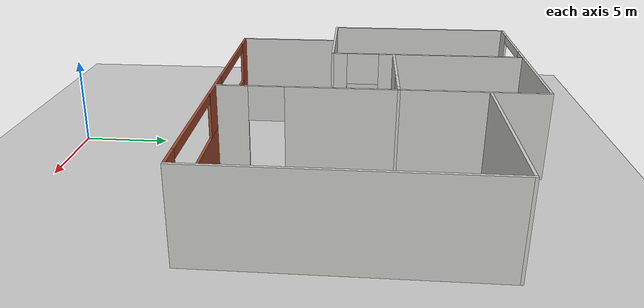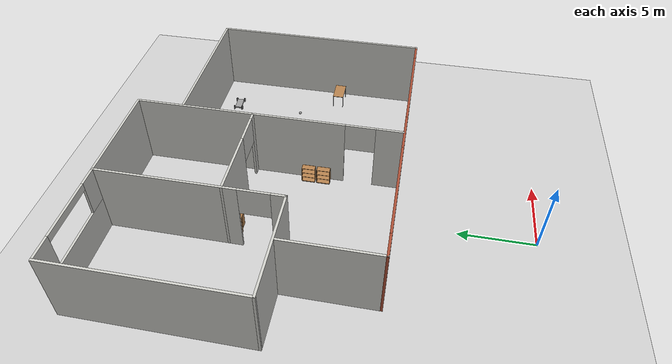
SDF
<sdf version="1.6">
 <world name="default">
  <plugin name="hello" filename="libhello.so"/>
  <light name="sun" type="directional">
   <pose>0 0 10 0 -0 0</pose>
   <diffuse>0.8 0.8 0.8 1</diffuse>
   <specular>0.2 0.2 0.2 1</specular>
   <attenuation>
    <range>1000</range>
    <constant>0.9</constant>
    <linear>0.01</linear>
    <quadratic>0.001</quadratic>
   </attenuation>
   <direction>-0.5 0.1 -0.9</direction>
  </light>
  <model name="ground_plane">
   <static>1</static>
   <link name="link">
    <collision name="collision">
     <geometry><plane><normal>0 0 1</normal><size>100 100</size></plane></geometry>
     <surface><friction><ode><mu>100</mu><mu2>50</mu2></ode></friction></surface>
    </collision>
    <visual name="visual">
     <cast_shadows>0</cast_shadows>
     <geometry><plane><normal>0 0 1</normal><size>100 100</size></plane></geometry>
     <material>
      <script><uri>file://media/materials/scripts/gazebo.material</uri><name>Gazebo/Grey</name></script>
     </material>
    </visual>
   </link>
  </model>
  <gravity>0 0 -9.8</gravity>
  <magnetic_field>6e-06 2.3e-05 -4.2e-05</magnetic_field>
  <atmosphere type="adiabatic"/>
  <physics name="default_physics" default="0" type="ode">
   <max_step_size>0.001</max_step_size>
   <real_time_factor>1</real_time_factor>
   <real_time_update_rate>1000</real_time_update_rate>
  </physics>
  <scene><ambient>0.4 0.4 0.4 1</ambient><background>0.7 0.7 0.7 1</background><shadows>1</shadows></scene>
  <spherical_coordinates>
   <surface_model>EARTH_WGS84</surface_model>
   <latitude_deg>0</latitude_deg>
   <longitude_deg>0</longitude_deg>
   <elevation>0</elevation>
   <heading_deg>0</heading_deg>
  </spherical_coordinates>
  <model name="BotHome">
   <pose>1.5949 18.0788 0 0 -0 0</pose>
   <link name="Door_0">
    <collision name="Door_0_Collision">
     <geometry><box><size>0.9 0.17 2</size></box></geometry>
     <pose>0 0 1 0 -0 0</pose>
    </collision>
    <visual name="Door_0_Visual">
     <pose>0 0 1 0 -0 0</pose>
     <geometry><box><size>0.9 0.17 2</size></box></geometry>
     <material>
      <script><uri>file://media/materials/scripts/gazebo.material</uri><name>Gazebo/Grey</name></script>
     </material>
    </visual>
    <pose>4.52809 6.21207 0 0 -0 0</pose>
   </link>
   <link name="Wall_11">
    <pose>1.85 -4 0 0 -0 1.5708</pose>
    <visual name="Wall_11_Visual_0">
     <pose>-4.12039 0 2.5 0 -0 0</pose>
     <geometry><box><size>1.90922 0.15 5</size></box></geometry>
     <material>
      <script><uri>file://media/materials/scripts/gazebo.material</uri><name>Gazebo/CeilingTiled</name></script>
      <ambient>0.921569 0.807843 0.615686 1</ambient>
     </material>
     <meta><layer>0</layer></meta>
    </visual>
    <collision name="Wall_11_Collision_0">
     <geometry><box><size>1.90922 0.15 5</size></box></geometry>
     <pose>-4.12039 0 2.5 0 -0 0</pose>
    </collision>
    <visual name="Wall_11_Visual_1">
     <pose>1.95461 0 2.5 0 -0 0</pose>
     <geometry><box><size>6.24078 0.15 5</size></box></geometry>
     <material>
      <script><uri>file://media/materials/scripts/gazebo.material</uri><name>Gazebo/CeilingTiled</name></script>
      <ambient>0.921569 0.807843 0.615686 1</ambient>
     </material>
     <meta><layer>0</layer></meta>
    </visual>
    <collision name="Wall_11_Collision_1">
     <geometry><box><size>6.24078 0.15 5</size></box></geometry>
     <pose>1.95461 0 2.5 0 -0 0</pose>
    </collision>
    <visual name="Wall_11_Visual_2">
     <pose>-2.16578 0 4 0 -0 0</pose>
     <geometry><box><size>2 0.15 2</size></box></geometry>
     <material>
      <script><uri>file://media/materials/scripts/gazebo.material</uri><name>Gazebo/CeilingTiled</name></script>
      <ambient>0.921569 0.807843 0.615686 1</ambient>
     </material>
     <meta><layer>0</layer></meta>
    </visual>
    <collision name="Wall_11_Collision_2">
     <geometry><box><size>2 0.15 2</size></box></geometry>
     <pose>-2.16578 0 4 0 -0 0</pose>
    </collision>
   </link>
   <link name="Wall_25">
    <pose>-1.575 1 0 0 -0 3.14159</pose>
    <visual name="Wall_25_Visual_0">
     <pose>-3.2031 0 2.5 0 -0 0</pose>
     <geometry><box><size>0.593804 0.15 5</size></box></geometry>
     <material>
      <script><uri>file://media/materials/scripts/gazebo.material</uri><name>Gazebo/CeilingTiled</name></script>
      <ambient>0.921569 0.807843 0.615686 1</ambient>
     </material>
     <meta><layer>0</layer></meta>
    </visual>
    <collision name="Wall_25_Collision_0">
     <geometry><box><size>0.593804 0.15 5</size></box></geometry>
     <pose>-3.2031 0 2.5 0 -0 0</pose>
    </collision>
    <visual name="Wall_25_Visual_1">
     <pose>1.2969 0 2.5 0 -0 0</pose>
     <geometry><box><size>4.4062 0.15 5</size></box></geometry>
     <material>
      <script><uri>file://media/materials/scripts/gazebo.material</uri><name>Gazebo/CeilingTiled</name></script>
      <ambient>0.921569 0.807843 0.615686 1</ambient>
     </material>
     <meta><layer>0</layer></meta>
    </visual>
    <collision name="Wall_25_Collision_1">
     <geometry><box><size>4.4062 0.15 5</size></box></geometry>
     <pose>1.2969 0 2.5 0 -0 0</pose>
    </collision>
    <visual name="Wall_25_Visual_2">
     <pose>-1.9062 0 4 0 -0 0</pose>
     <geometry><box><size>2 0.15 2</size></box></geometry>
     <material>
      <script><uri>file://media/materials/scripts/gazebo.material</uri><name>Gazebo/CeilingTiled</name></script>
      <ambient>0.921569 0.807843 0.615686 1</ambient>
     </material>
     <meta><layer>0</layer></meta>
    </visual>
    <collision name="Wall_25_Collision_2">
     <geometry><box><size>2 0.15 2</size></box></geometry>
     <pose>-1.9062 0 4 0 -0 0</pose>
    </collision>
   </link>
   <link name="Wall_27">
    <pose>-5 -0.925 0 0 0 -1.5708</pose>
    <visual name="Wall_27_Visual_0">
     <pose>-1.49609 0 2.5 0 -0 0</pose>
     <geometry><box><size>1.00781 0.15 5</size></box></geometry>
     <material>
      <script><uri>file://media/materials/scripts/gazebo.material</uri><name>Gazebo/CeilingTiled</name></script>
      <ambient>0.921569 0.807843 0.615686 1</ambient>
     </material>
     <meta><layer>0</layer></meta>
    </visual>
    <collision name="Wall_27_Collision_0">
     <geometry><box><size>1.00781 0.15 5</size></box></geometry>
     <pose>-1.49609 0 2.5 0 -0 0</pose>
    </collision>
    <visual name="Wall_27_Visual_1">
     <pose>1.50391 0 2.5 0 -0 0</pose>
     <geometry><box><size>0.992188 0.15 5</size></box></geometry>
     <material>
      <script><uri>file://media/materials/scripts/gazebo.material</uri><name>Gazebo/CeilingTiled</name></script>
      <ambient>0.921569 0.807843 0.615686 1</ambient>
     </material>
     <meta><layer>0</layer></meta>
    </visual>
    <collision name="Wall_27_Collision_1">
     <geometry><box><size>0.992188 0.15 5</size></box></geometry>
     <pose>1.50391 0 2.5 0 -0 0</pose>
    </collision>
    <visual name="Wall_27_Visual_2">
     <pose>0.007813 0 4 0 -0 0</pose>
     <geometry><box><size>2 0.15 2</size></box></geometry>
     <material>
      <script><uri>file://media/materials/scripts/gazebo.material</uri><name>Gazebo/CeilingTiled</name></script>
      <ambient>0.921569 0.807843 0.615686 1</ambient>
     </material>
     <meta><layer>0</layer></meta>
    </visual>
    <collision name="Wall_27_Collision_2">
     <geometry><box><size>2 0.15 2</size></box></geometry>
     <pose>0.007813 0 4 0 -0 0</pose>
    </collision>
   </link>
   <link name="Wall_29">
    <collision name="Wall_29_Collision">
     <geometry><box><size>7 0.15 5</size></box></geometry>
     <pose>0 0 2.5 0 -0 0</pose>
    </collision>
    <visual name="Wall_29_Visual">
     <pose>0 0 2.5 0 -0 0</pose>
     <geometry><box><size>7 0.15 5</size></box></geometry>
     <material>
      <script><uri>file://media/materials/scripts/gazebo.material</uri><name>Gazebo/CeilingTiled</name></script>
      <ambient>0.921569 0.807843 0.615686 1</ambient>
     </material>
     <meta><layer>0</layer></meta>
    </visual>
    <pose>-8.425 -2.85 0 0 -0 3.14159</pose>
   </link>
   <link name="Wall_31">
    <collision name="Wall_31_Collision">
     <geometry><box><size>6.15 0.15 5</size></box></geometry>
     <pose>0 0 2.5 0 -0 0</pose>
    </collision>
    <visual name="Wall_31_Visual">
     <pose>0 0 2.5 0 -0 0</pose>
     <geometry><box><size>6.15 0.15 5</size></box></geometry>
     <material>
      <script><uri>file://media/materials/scripts/gazebo.material</uri><name>Gazebo/CeilingTiled</name></script>
      <ambient>0.921569 0.807843 0.615686 1</ambient>
     </material>
     <meta><layer>0</layer></meta>
    </visual>
    <pose>-8.15 -6 0 0 -0 1.5708</pose>
   </link>
   <link name="Wall_33">
    <collision name="Wall_33_Collision">
     <geometry><box><size>12 0.15 5</size></box></geometry>
     <pose>0 0 2.5 0 -0 0</pose>
    </collision>
    <visual name="Wall_33_Visual">
     <pose>0 0 2.5 0 -0 0</pose>
     <geometry><box><size>12 0.15 5</size></box></geometry>
     <material>
      <script><uri>file://media/materials/scripts/gazebo.material</uri><name>Gazebo/CeilingTiled</name></script>
      <ambient>0.921569 0.807843 0.615686 1</ambient>
     </material>
     <meta><layer>0</layer></meta>
    </visual>
    <pose>-11.85 3.075 0 0 -0 1.5708</pose>
   </link>
   <link name="Wall_35">
    <collision name="Wall_35_Collision">
     <geometry><box><size>8 0.15 5</size></box></geometry>
     <pose>0 0 2.5 0 -0 0</pose>
    </collision>
    <visual name="Wall_35_Visual">
     <pose>0 0 2.5 0 -0 0</pose>
     <geometry><box><size>8 0.15 5</size></box></geometry>
     <material>
      <script><uri>file://media/materials/scripts/gazebo.material</uri><name>Gazebo/CeilingTiled</name></script>
      <ambient>0.921569 0.807843 0.615686 1</ambient>
     </material>
     <meta><layer>0</layer></meta>
    </visual>
    <pose>-5 4.925 0 0 -0 1.5708</pose>
   </link>
   <link name="Wall_37">
    <pose>-8.425 9 0 0 -0 0</pose>
    <visual name="Wall_37_Visual_0">
     <pose>-2.68249 0 2.5 0 -0 0</pose>
     <geometry><box><size>1.63502 0.15 5</size></box></geometry>
     <material>
      <script><uri>file://media/materials/scripts/gazebo.material</uri><name>Gazebo/CeilingTiled</name></script>
      <ambient>0.921569 0.807843 0.615686 1</ambient>
     </material>
     <meta><layer>0</layer></meta>
    </visual>
    <collision name="Wall_37_Collision_0">
     <geometry><box><size>1.63502 0.15 5</size></box></geometry>
     <pose>-2.68249 0 2.5 0 -0 0</pose>
    </collision>
    <visual name="Wall_37_Visual_1">
     <pose>0.817508 0 1.25 0 -0 0</pose>
     <geometry><box><size>5.36498 0.15 2.5</size></box></geometry>
     <material>
      <script><uri>file://media/materials/scripts/gazebo.material</uri><name>Gazebo/CeilingTiled</name></script>
      <ambient>0.921569 0.807843 0.615686 1</ambient>
     </material>
     <meta><layer>0</layer></meta>
    </visual>
    <collision name="Wall_37_Collision_1">
     <geometry><box><size>5.36498 0.15 2.5</size></box></geometry>
     <pose>0.817508 0 1.25 0 -0 0</pose>
    </collision>
    <visual name="Wall_37_Visual_2">
     <pose>2.81751 0 3.75 0 -0 0</pose>
     <geometry><box><size>1.36498 0.15 2.5</size></box></geometry>
     <material>
      <script><uri>file://media/materials/scripts/gazebo.material</uri><name>Gazebo/CeilingTiled</name></script>
      <ambient>0.921569 0.807843 0.615686 1</ambient>
     </material>
     <meta><layer>0</layer></meta>
    </visual>
    <collision name="Wall_37_Collision_2">
     <geometry><box><size>1.36498 0.15 2.5</size></box></geometry>
     <pose>2.81751 0 3.75 0 -0 0</pose>
    </collision>
    <visual name="Wall_37_Visual_3">
     <pose>0.135017 0 4.75 0 -0 0</pose>
     <geometry><box><size>4 0.15 0.5</size></box></geometry>
     <material>
      <script><uri>file://media/materials/scripts/gazebo.material</uri><name>Gazebo/CeilingTiled</name></script>
      <ambient>0.921569 0.807843 0.615686 1</ambient>
     </material>
     <meta><layer>0</layer></meta>
    </visual>
    <collision name="Wall_37_Collision_3">
     <geometry><box><size>4 0.15 0.5</size></box></geometry>
     <pose>0.135017 0 4.75 0 -0 0</pose>
    </collision>
   </link>
   <link name="Wall_39">
    <collision name="Wall_39_Collision">
     <geometry><box><size>7 0.15 5</size></box></geometry>
     <pose>0 0 2.5 0 -0 0</pose>
    </collision>
    <visual name="Wall_39_Visual">
     <pose>0 0 2.5 0 -0 0</pose>
     <geometry><box><size>7 0.15 5</size></box></geometry>
     <material>
      <script><uri>file://media/materials/scripts/gazebo.material</uri><name>Gazebo/CeilingTiled</name></script>
      <ambient>0.921569 0.807843 0.615686 1</ambient>
     </material>
     <meta><layer>0</layer></meta>
    </visual>
    <pose>-1.575 9 0 0 -0 0</pose>
   </link>
   <link name="Wall_4">
    <pose>1.85 -9 0 0 -0 0</pose>
    <visual name="Wall_4_Visual_0">
     <pose>-9.25865 0 2.5 0 -0 0</pose>
     <geometry><box><size>1.63271 0.15 5</size></box></geometry>
     <material>
      <script><uri>file://media/materials/scripts/gazebo.material</uri><name>Gazebo/Bricks</name></script>
      <ambient>0.921569 0.807843 0.615686 1</ambient>
     </material>
     <meta><layer>0</layer></meta>
    </visual>
    <collision name="Wall_4_Collision_0">
     <geometry><box><size>1.63271 0.15 5</size></box></geometry>
     <pose>-9.25865 0 2.5 0 -0 0</pose>
    </collision>
    <visual name="Wall_4_Visual_1">
     <pose>0.816354 0 1.25 0 -0 0</pose>
     <geometry><box><size>18.5173 0.15 2.5</size></box></geometry>
     <material>
      <script><uri>file://media/materials/scripts/gazebo.material</uri><name>Gazebo/Bricks</name></script>
      <ambient>0.921569 0.807843 0.615686 1</ambient>
     </material>
     <meta><layer>0</layer></meta>
    </visual>
    <collision name="Wall_4_Collision_1">
     <geometry><box><size>18.5173 0.15 2.5</size></box></geometry>
     <pose>0.816354 0 1.25 0 -0 0</pose>
    </collision>
    <visual name="Wall_4_Visual_2">
     <pose>0.069766 0 3.75 0 -0 0</pose>
     <geometry><box><size>3.02412 0.15 2.5</size></box></geometry>
     <material>
      <script><uri>file://media/materials/scripts/gazebo.material</uri><name>Gazebo/Bricks</name></script>
      <ambient>0.921569 0.807843 0.615686 1</ambient>
     </material>
     <meta><layer>0</layer></meta>
    </visual>
    <collision name="Wall_4_Collision_2">
     <geometry><box><size>3.02412 0.15 2.5</size></box></geometry>
     <pose>0.069766 0 3.75 0 -0 0</pose>
    </collision>
    <visual name="Wall_4_Visual_3">
     <pose>9.32841 0 3.75 0 -0 0</pose>
     <geometry><box><size>1.49318 0.15 2.5</size></box></geometry>
     <material>
      <script><uri>file://media/materials/scripts/gazebo.material</uri><name>Gazebo/Bricks</name></script>
      <ambient>0.921569 0.807843 0.615686 1</ambient>
     </material>
     <meta><layer>0</layer></meta>
    </visual>
    <collision name="Wall_4_Collision_3">
     <geometry><box><size>1.49318 0.15 2.5</size></box></geometry>
     <pose>9.32841 0 3.75 0 -0 0</pose>
    </collision>
    <visual name="Wall_4_Visual_4">
     <pose>-4.94229 0 4.75 0 -0 0</pose>
     <geometry><box><size>7 0.15 0.5</size></box></geometry>
     <material>
      <script><uri>file://media/materials/scripts/gazebo.material</uri><name>Gazebo/Bricks</name></script>
      <ambient>0.921569 0.807843 0.615686 1</ambient>
     </material>
     <meta><layer>0</layer></meta>
    </visual>
    <collision name="Wall_4_Collision_4">
     <geometry><box><size>7 0.15 0.5</size></box></geometry>
     <pose>-4.94229 0 4.75 0 -0 0</pose>
    </collision>
    <visual name="Wall_4_Visual_5">
     <pose>5.08182 0 4.75 0 -0 0</pose>
     <geometry><box><size>7 0.15 0.5</size></box></geometry>
     <material>
      <script><uri>file://media/materials/scripts/gazebo.material</uri><name>Gazebo/Bricks</name></script>
      <ambient>0.921569 0.807843 0.615686 1</ambient>
     </material>
     <meta><layer>0</layer></meta>
    </visual>
    <collision name="Wall_4_Collision_5">
     <geometry><box><size>7 0.15 0.5</size></box></geometry>
     <pose>5.08182 0 4.75 0 -0 0</pose>
    </collision>
   </link>
   <link name="Wall_42">
    <collision name="Wall_42_Collision">
     <geometry><box><size>8.15 0.15 5</size></box></geometry>
     <pose>0 0 2.5 0 -0 0</pose>
    </collision>
    <visual name="Wall_42_Visual">
     <pose>0 0 2.5 0 -0 0</pose>
     <geometry><box><size>8.15 0.15 5</size></box></geometry>
     <material>
      <script><uri>file://media/materials/scripts/gazebo.material</uri><name>Gazebo/CeilingTiled</name></script>
      <ambient>0.921569 0.807843 0.615686 1</ambient>
     </material>
     <meta><layer>0</layer></meta>
    </visual>
    <pose>1.85 5 0 0 0 -1.5708</pose>
   </link>
   <link name="Wall_6">
    <collision name="Wall_6_Collision">
     <geometry><box><size>15 0.15 5</size></box></geometry>
     <pose>0 0 2.5 0 -0 0</pose>
    </collision>
    <visual name="Wall_6_Visual">
     <pose>0 0 2.5 0 -0 0</pose>
     <geometry><box><size>15 0.15 5</size></box></geometry>
     <material>
      <script><uri>file://media/materials/scripts/gazebo.material</uri><name>Gazebo/CeilingTiled</name></script>
      <ambient>0.921569 0.807843 0.615686 1</ambient>
     </material>
     <meta><layer>0</layer></meta>
    </visual>
    <pose>11.85 -1.575 0 0 -0 1.5708</pose>
   </link>
   <link name="Wall_8">
    <collision name="Wall_8_Collision">
     <geometry><box><size>10 0.15 5</size></box></geometry>
     <pose>0 0 2.5 0 -0 0</pose>
    </collision>
    <visual name="Wall_8_Visual">
     <pose>0 0 2.5 0 -0 0</pose>
     <geometry><box><size>10 0.15 5</size></box></geometry>
     <material>
      <script><uri>file://media/materials/scripts/gazebo.material</uri><name>Gazebo/CeilingTiled</name></script>
      <ambient>0.921569 0.807843 0.615686 1</ambient>
     </material>
     <meta><layer>0</layer></meta>
    </visual>
    <pose>6.925 5.85 0 0 -0 3.14159</pose>
   </link>
   <static>1</static>
  </model>
  <model name="bookshelf">
   <static>1</static>
   <link name="link">
    <inertial><mass>1</mass></inertial>
    <collision name="back">
     <pose>0 0.005 0.6 0 -0 0</pose>
     <geometry><box><size>0.9 0.01 1.2</size></box></geometry>
    </collision>
    <visual name="visual1">
     <pose>0 0.005 0.6 0 -0 0</pose>
     <geometry><box><size>0.9 0.01 1.2</size></box></geometry>
     <material>
      <script><uri>file://media/materials/scripts/gazebo.material</uri><name>Gazebo/Wood</name></script>
     </material>
    </visual>
    <collision name="left_side">
     <pose>0.45 -0.195 0.6 0 -0 0</pose>
     <geometry><box><size>0.02 0.4 1.2</size></box></geometry>
    </collision>
    <visual name="visual2">
     <pose>0.45 -0.195 0.6 0 -0 0</pose>
     <geometry><box><size>0.02 0.4 1.2</size></box></geometry>
     <material>
      <script><uri>file://media/materials/scripts/gazebo.material</uri><name>Gazebo/Wood</name></script>
     </material>
    </visual>
    <collision name="right_side">
     <pose>-0.45 -0.195 0.6 0 -0 0</pose>
     <geometry><box><size>0.02 0.4 1.2</size></box></geometry>
    </collision>
    <visual name="visual3">
     <pose>-0.45 -0.195 0.6 0 -0 0</pose>
     <geometry><box><size>0.02 0.4 1.2</size></box></geometry>
     <material>
      <script><uri>file://media/materials/scripts/gazebo.material</uri><name>Gazebo/Wood</name></script>
     </material>
    </visual>
    <collision name="bottom">
     <pose>0 -0.195 0.03 0 -0 0</pose>
     <geometry><box><size>0.88 0.4 0.06</size></box></geometry>
    </collision>
    <visual name="visual4">
     <pose>0 -0.195 0.03 0 -0 0</pose>
     <geometry><box><size>0.88 0.4 0.06</size></box></geometry>
     <material>
      <script><uri>file://media/materials/scripts/gazebo.material</uri><name>Gazebo/Wood</name></script>
     </material>
    </visual>
    <collision name="top">
     <pose>0 -0.195 1.19 0 -0 0</pose>
     <geometry><box><size>0.88 0.4 0.02</size></box></geometry>
    </collision>
    <visual name="visual5">
     <pose>0 -0.195 1.19 0 -0 0</pose>
     <geometry><box><size>0.88 0.4 0.02</size></box></geometry>
     <material>
      <script><uri>file://media/materials/scripts/gazebo.material</uri><name>Gazebo/Wood</name></script>
     </material>
    </visual>
    <collision name="low_shelf">
     <pose>0 -0.195 0.43 0 -0 0</pose>
     <geometry><box><size>0.88 0.4 0.02</size></box></geometry>
    </collision>
    <visual name="visual6">
     <pose>0 -0.195 0.43 0 -0 0</pose>
     <geometry><box><size>0.88 0.4 0.02</size></box></geometry>
     <material>
      <script><uri>file://media/materials/scripts/gazebo.material</uri><name>Gazebo/Wood</name></script>
     </material>
    </visual>
    <collision name="high_shelf">
     <pose>0 -0.195 0.8 0 -0 0</pose>
     <geometry><box><size>0.88 0.4 0.02</size></box></geometry>
    </collision>
    <visual name="visual7">
     <pose>0 -0.195 0.8 0 -0 0</pose>
     <geometry><box><size>0.88 0.4 0.02</size></box></geometry>
     <material>
      <script><uri>file://media/materials/scripts/gazebo.material</uri><name>Gazebo/Wood</name></script>
     </material>
    </visual>
   </link>
   <pose>3.21379 15.2718 0 0 0 -1.57123</pose>
  </model>
  <model name="bookshelf_clone">
   <static>1</static>
   <link name="link">
    <inertial><mass>1</mass></inertial>
    <collision name="back">
     <pose>0 0.005 0.6 0 -0 0</pose>
     <geometry><box><size>0.9 0.01 1.2</size></box></geometry>
    </collision>
    <visual name="visual1">
     <pose>0 0.005 0.6 0 -0 0</pose>
     <geometry><box><size>0.9 0.01 1.2</size></box></geometry>
     <material>
      <script><uri>file://media/materials/scripts/gazebo.material</uri><name>Gazebo/Wood</name></script>
     </material>
    </visual>
    <collision name="left_side">
     <pose>0.45 -0.195 0.6 0 -0 0</pose>
     <geometry><box><size>0.02 0.4 1.2</size></box></geometry>
    </collision>
    <visual name="visual2">
     <pose>0.45 -0.195 0.6 0 -0 0</pose>
     <geometry><box><size>0.02 0.4 1.2</size></box></geometry>
     <material>
      <script><uri>file://media/materials/scripts/gazebo.material</uri><name>Gazebo/Wood</name></script>
     </material>
    </visual>
    <collision name="right_side">
     <pose>-0.45 -0.195 0.6 0 -0 0</pose>
     <geometry><box><size>0.02 0.4 1.2</size></box></geometry>
    </collision>
    <visual name="visual3">
     <pose>-0.45 -0.195 0.6 0 -0 0</pose>
     <geometry><box><size>0.02 0.4 1.2</size></box></geometry>
     <material>
      <script><uri>file://media/materials/scripts/gazebo.material</uri><name>Gazebo/Wood</name></script>
     </material>
    </visual>
    <collision name="bottom">
     <pose>0 -0.195 0.03 0 -0 0</pose>
     <geometry><box><size>0.88 0.4 0.06</size></box></geometry>
    </collision>
    <visual name="visual4">
     <pose>0 -0.195 0.03 0 -0 0</pose>
     <geometry><box><size>0.88 0.4 0.06</size></box></geometry>
     <material>
      <script><uri>file://media/materials/scripts/gazebo.material</uri><name>Gazebo/Wood</name></script>
     </material>
    </visual>
    <collision name="top">
     <pose>0 -0.195 1.19 0 -0 0</pose>
     <geometry><box><size>0.88 0.4 0.02</size></box></geometry>
    </collision>
    <visual name="visual5">
     <pose>0 -0.195 1.19 0 -0 0</pose>
     <geometry><box><size>0.88 0.4 0.02</size></box></geometry>
     <material>
      <script><uri>file://media/materials/scripts/gazebo.material</uri><name>Gazebo/Wood</name></script>
     </material>
    </visual>
    <collision name="low_shelf">
     <pose>0 -0.195 0.43 0 -0 0</pose>
     <geometry><box><size>0.88 0.4 0.02</size></box></geometry>
    </collision>
    <visual name="visual6">
     <pose>0 -0.195 0.43 0 -0 0</pose>
     <geometry><box><size>0.88 0.4 0.02</size></box></geometry>
     <material>
      <script><uri>file://media/materials/scripts/gazebo.material</uri><name>Gazebo/Wood</name></script>
     </material>
    </visual>
    <collision name="high_shelf">
     <pose>0 -0.195 0.8 0 -0 0</pose>
     <geometry><box><size>0.88 0.4 0.02</size></box></geometry>
    </collision>
    <visual name="visual7">
     <pose>0 -0.195 0.8 0 -0 0</pose>
     <geometry><box><size>0.88 0.4 0.02</size></box></geometry>
     <material>
      <script><uri>file://media/materials/scripts/gazebo.material</uri><name>Gazebo/Wood</name></script>
     </material>
    </visual>
   </link>
   <pose>3.21746 14.2398 0 0 0 -1.57123</pose>
  </model>
  <model name="cart_front_steer">
   <link name="chassis">
    <pose>0 0 0.15 0 -0 0</pose>
    <inertial>
     <pose>0.1 0 0 0 -0 0</pose>
     <mass>10</mass>
     <inertia>
      <ixx>0.216667</ixx>
      <iyy>0.841667</iyy>
      <izz>1.04167</izz>
      <ixy>0</ixy>
      <ixz>0</ixz>
      <iyz>0</iyz>
     </inertia>
    </inertial>
    <collision name="collision"><geometry><box><size>1 0.5 0.1</size></box></geometry></collision>
    <visual name="visual">
     <geometry><box><size>1 0.5 0.1</size></box></geometry>
     <material>
      <script><uri>file://media/materials/scripts/gazebo.material</uri><name>Gazebo/Grey</name></script>
     </material>
    </visual>
   </link>
   <link name="wheel_front_left">
    <pose>0.5 0.298 0.15 -1.5708 -0.087266 0</pose>
    <inertial>
     <mass>0.5</mass>
     <inertia>
      <ixx>0.00307917</ixx>
      <iyy>0.00307917</iyy>
      <izz>0.005625</izz>
      <ixy>0</ixy>
      <ixz>0</ixz>
      <iyz>0</iyz>
     </inertia>
    </inertial>
    <collision name="collision">
     <geometry><cylinder><radius>0.15</radius><length>0.08</length></cylinder></geometry>
    </collision>
    <visual name="visual">
     <geometry><cylinder><radius>0.15</radius><length>0.08</length></cylinder></geometry>
     <material>
      <script><uri>file://media/materials/scripts/gazebo.material</uri><name>Gazebo/Black</name></script>
     </material>
    </visual>
   </link>
   <joint name="wheel_front_left_steer_spin" type="universal">
    <parent>chassis</parent>
    <child>wheel_front_left</child>
    <axis>
     <xyz>0 -1 0</xyz>
     <limit><lower>-0.610865</lower><upper>0.610865</upper></limit>
     <use_parent_model_frame>0</use_parent_model_frame>
     <dynamics><spring_reference>0</spring_reference><spring_stiffness>0</spring_stiffness></dynamics>
    </axis>
    <axis2>
     <xyz>0 0 1</xyz>
     <use_parent_model_frame>0</use_parent_model_frame>
     <dynamics><spring_reference>0</spring_reference><spring_stiffness>0</spring_stiffness></dynamics>
    </axis2>
   </joint>
   <link name="wheel_front_right">
    <pose>0.5 -0.298 0.15 -1.5708 -0.087266 0</pose>
    <inertial>
     <mass>0.5</mass>
     <inertia>
      <ixx>0.00307917</ixx>
      <iyy>0.00307917</iyy>
      <izz>0.005625</izz>
      <ixy>0</ixy>
      <ixz>0</ixz>
      <iyz>0</iyz>
     </inertia>
    </inertial>
    <collision name="collision">
     <geometry><cylinder><radius>0.15</radius><length>0.08</length></cylinder></geometry>
    </collision>
    <visual name="visual">
     <geometry><cylinder><radius>0.15</radius><length>0.08</length></cylinder></geometry>
     <material>
      <script><uri>file://media/materials/scripts/gazebo.material</uri><name>Gazebo/Black</name></script>
     </material>
    </visual>
   </link>
   <joint name="wheel_front_right_steer_spin" type="universal">
    <parent>chassis</parent>
    <child>wheel_front_right</child>
    <axis>
     <xyz>0 -1 0</xyz>
     <limit><lower>-0.610865</lower><upper>0.610865</upper></limit>
     <use_parent_model_frame>0</use_parent_model_frame>
     <dynamics><spring_reference>0</spring_reference><spring_stiffness>0</spring_stiffness></dynamics>
    </axis>
    <axis2>
     <xyz>0 0 1</xyz>
     <use_parent_model_frame>0</use_parent_model_frame>
     <dynamics><spring_reference>0</spring_reference><spring_stiffness>0</spring_stiffness></dynamics>
    </axis2>
   </joint>
   <link name="wheel_rear_left">
    <pose>-0.5 0.298 0.15 -1.5708 0 0</pose>
    <inertial>
     <mass>0.5</mass>
     <inertia>
      <ixx>0.00307917</ixx>
      <iyy>0.00307917</iyy>
      <izz>0.005625</izz>
      <ixy>0</ixy>
      <ixz>0</ixz>
      <iyz>0</iyz>
     </inertia>
    </inertial>
    <collision name="collision">
     <geometry><cylinder><radius>0.15</radius><length>0.08</length></cylinder></geometry>
    </collision>
    <visual name="visual">
     <geometry><cylinder><radius>0.15</radius><length>0.08</length></cylinder></geometry>
     <material>
      <script><uri>file://media/materials/scripts/gazebo.material</uri><name>Gazebo/Black</name></script>
     </material>
    </visual>
   </link>
   <joint name="wheel_rear_left_spin" type="revolute">
    <parent>chassis</parent>
    <child>wheel_rear_left</child>
    <axis>
     <xyz>0 0 1</xyz>
     <use_parent_model_frame>0</use_parent_model_frame>
     <limit><lower>-1e+16</lower><upper>1e+16</upper></limit>
     <dynamics><spring_reference>0</spring_reference><spring_stiffness>0</spring_stiffness></dynamics>
    </axis>
   </joint>
   <link name="wheel_rear_right">
    <pose>-0.5 -0.298 0.15 -1.5708 0 0</pose>
    <inertial>
     <mass>0.5</mass>
     <inertia>
      <ixx>0.00307917</ixx>
      <iyy>0.00307917</iyy>
      <izz>0.005625</izz>
      <ixy>0</ixy>
      <ixz>0</ixz>
      <iyz>0</iyz>
     </inertia>
    </inertial>
    <collision name="collision">
     <geometry><cylinder><radius>0.15</radius><length>0.08</length></cylinder></geometry>
    </collision>
    <visual name="visual">
     <geometry><cylinder><radius>0.15</radius><length>0.08</length></cylinder></geometry>
     <material>
      <script><uri>file://media/materials/scripts/gazebo.material</uri><name>Gazebo/Black</name></script>
     </material>
    </visual>
   </link>
   <joint name="wheel_rear_right_spin" type="revolute">
    <parent>chassis</parent>
    <child>wheel_rear_right</child>
    <axis>
     <xyz>0 0 1</xyz>
     <use_parent_model_frame>0</use_parent_model_frame>
     <limit><lower>-1e+16</lower><upper>1e+16</upper></limit>
     <dynamics><spring_reference>0</spring_reference><spring_stiffness>0</spring_stiffness></dynamics>
    </axis>
   </joint>
   <pose>10.3011 22.4248 -8e-06 2.5e-05 -1e-06 0.067973</pose>
  </model>
  <model name="cabinet">
   <static>1</static>
   <link name="cabinet_bottom_plate">
    <inertial>
     <pose>0 0 -1 0 -0 0</pose>
     <inertia><ixx>2.05</ixx><ixy>0</ixy><ixz>0</ixz><iyy>2.05</iyy><iyz>0</iyz><izz>2.05</izz></inertia>
     <mass>25</mass>
    </inertial>
    <collision name="cabinet_bottom_plate_geom">
     <pose>0 0 0.01 0 -0 0</pose>
     <geometry><box><size>0.45 0.45 0.02</size></box></geometry>
    </collision>
    <visual name="cabinet_bottom_plate_geom_visual">
     <pose>0 0 0.01 0 -0 0</pose>
     <geometry><box><size>0.45 0.45 0.02</size></box></geometry>
     <material>
      <script><uri>file://media/materials/scripts/gazebo.material</uri><name>Gazebo/Wood</name></script>
     </material>
    </visual>
    <collision name="cabinet_bottom_plate_geom_cabinet_back_plate">
     <pose>0.235 0 0.51 0 -0 0</pose>
     <geometry><box><size>0.02 0.45 1.02</size></box></geometry>
    </collision>
    <visual name="cabinet_bottom_plate_geom_cabinet_back_plate_visual">
     <pose>0.235 0 0.51 0 -0 0</pose>
     <geometry><box><size>0.02 0.45 1.02</size></box></geometry>
     <material>
      <script><uri>file://media/materials/scripts/gazebo.material</uri><name>Gazebo/Wood</name></script>
     </material>
    </visual>
    <collision name="cabinet_bottom_plate_geom_cabinet_left_plate">
     <pose>0 0.235 0.51 0 -0 0</pose>
     <geometry><box><size>0.45 0.02 1.02</size></box></geometry>
    </collision>
    <visual name="cabinet_bottom_plate_geom_cabinet_left_plate_visual">
     <pose>0 0.235 0.51 0 -0 0</pose>
     <geometry><box><size>0.45 0.02 1.02</size></box></geometry>
     <material>
      <script><uri>file://media/materials/scripts/gazebo.material</uri><name>Gazebo/Wood</name></script>
     </material>
    </visual>
    <collision name="cabinet_bottom_plate_geom_cabinet_middle_plate">
     <pose>0 0 0.51 0 -0 0</pose>
     <geometry><box><size>0.45 0.45 0.02</size></box></geometry>
    </collision>
    <visual name="cabinet_bottom_plate_geom_cabinet_middle_plate_visual">
     <pose>0 0 0.51 0 -0 0</pose>
     <geometry><box><size>0.45 0.45 0.02</size></box></geometry>
     <material>
      <script><uri>file://media/materials/scripts/gazebo.material</uri><name>Gazebo/Wood</name></script>
     </material>
    </visual>
    <collision name="cabinet_bottom_plate_geom_cabinet_right_plate">
     <pose>0 -0.235 0.51 0 -0 0</pose>
     <geometry><box><size>0.45 0.02 1.02</size></box></geometry>
    </collision>
    <visual name="cabinet_bottom_plate_geom_cabinet_right_plate_visual">
     <pose>0 -0.235 0.51 0 -0 0</pose>
     <geometry><box><size>0.45 0.02 1.02</size></box></geometry>
     <material>
      <script><uri>file://media/materials/scripts/gazebo.material</uri><name>Gazebo/Wood</name></script>
     </material>
    </visual>
    <collision name="cabinet_bottom_plate_geom_cabinet_top_plate">
     <pose>0 0 1.01 0 -0 0</pose>
     <geometry><box><size>0.45 0.45 0.02</size></box></geometry>
    </collision>
    <visual name="cabinet_bottom_plate_geom_cabinet_top_plate_visual">
     <pose>0 0 1.01 0 -0 0</pose>
     <geometry><box><size>0.45 0.45 0.02</size></box></geometry>
     <material>
      <script><uri>file://media/materials/scripts/gazebo.material</uri><name>Gazebo/Wood</name></script>
     </material>
    </visual>
   </link>
   <pose>-2.5836 18.7217 0 0 -0 0</pose>
  </model>
  <model name="cabinet_0">
   <static>1</static>
   <link name="cabinet_bottom_plate">
    <inertial>
     <pose>0 0 -1 0 -0 0</pose>
     <inertia><ixx>2.05</ixx><ixy>0</ixy><ixz>0</ixz><iyy>2.05</iyy><iyz>0</iyz><izz>2.05</izz></inertia>
     <mass>25</mass>
    </inertial>
    <collision name="cabinet_bottom_plate_geom">
     <pose>0 0 0.01 0 -0 0</pose>
     <geometry><box><size>0.45 0.45 0.02</size></box></geometry>
    </collision>
    <visual name="cabinet_bottom_plate_geom_visual">
     <pose>0 0 0.01 0 -0 0</pose>
     <geometry><box><size>0.45 0.45 0.02</size></box></geometry>
     <material>
      <script><uri>file://media/materials/scripts/gazebo.material</uri><name>Gazebo/Wood</name></script>
     </material>
    </visual>
    <collision name="cabinet_bottom_plate_geom_cabinet_back_plate">
     <pose>0.235 0 0.51 0 -0 0</pose>
     <geometry><box><size>0.02 0.45 1.02</size></box></geometry>
    </collision>
    <visual name="cabinet_bottom_plate_geom_cabinet_back_plate_visual">
     <pose>0.235 0 0.51 0 -0 0</pose>
     <geometry><box><size>0.02 0.45 1.02</size></box></geometry>
     <material>
      <script><uri>file://media/materials/scripts/gazebo.material</uri><name>Gazebo/Wood</name></script>
     </material>
    </visual>
    <collision name="cabinet_bottom_plate_geom_cabinet_left_plate">
     <pose>0 0.235 0.51 0 -0 0</pose>
     <geometry><box><size>0.45 0.02 1.02</size></box></geometry>
    </collision>
    <visual name="cabinet_bottom_plate_geom_cabinet_left_plate_visual">
     <pose>0 0.235 0.51 0 -0 0</pose>
     <geometry><box><size>0.45 0.02 1.02</size></box></geometry>
     <material>
      <script><uri>file://media/materials/scripts/gazebo.material</uri><name>Gazebo/Wood</name></script>
     </material>
    </visual>
    <collision name="cabinet_bottom_plate_geom_cabinet_middle_plate">
     <pose>0 0 0.51 0 -0 0</pose>
     <geometry><box><size>0.45 0.45 0.02</size></box></geometry>
    </collision>
    <visual name="cabinet_bottom_plate_geom_cabinet_middle_plate_visual">
     <pose>0 0 0.51 0 -0 0</pose>
     <geometry><box><size>0.45 0.45 0.02</size></box></geometry>
     <material>
      <script><uri>file://media/materials/scripts/gazebo.material</uri><name>Gazebo/Wood</name></script>
     </material>
    </visual>
    <collision name="cabinet_bottom_plate_geom_cabinet_right_plate">
     <pose>0 -0.235 0.51 0 -0 0</pose>
     <geometry><box><size>0.45 0.02 1.02</size></box></geometry>
    </collision>
    <visual name="cabinet_bottom_plate_geom_cabinet_right_plate_visual">
     <pose>0 -0.235 0.51 0 -0 0</pose>
     <geometry><box><size>0.45 0.02 1.02</size></box></geometry>
     <material>
      <script><uri>file://media/materials/scripts/gazebo.material</uri><name>Gazebo/Wood</name></script>
     </material>
    </visual>
    <collision name="cabinet_bottom_plate_geom_cabinet_top_plate">
     <pose>0 0 1.01 0 -0 0</pose>
     <geometry><box><size>0.45 0.45 0.02</size></box></geometry>
    </collision>
    <visual name="cabinet_bottom_plate_geom_cabinet_top_plate_visual">
     <pose>0 0 1.01 0 -0 0</pose>
     <geometry><box><size>0.45 0.45 0.02</size></box></geometry>
     <material>
      <script><uri>file://media/materials/scripts/gazebo.material</uri><name>Gazebo/Wood</name></script>
     </material>
    </visual>
   </link>
   <pose>-1.90976 18.804 0 0 -0 0</pose>
  </model>
  <model name="table">
   <static>1</static>
   <link name="link">
    <collision name="surface">
     <pose>0 0 1 0 -0 0</pose>
     <geometry><box><size>1.5 0.8 0.03</size></box></geometry>
     <surface><friction><ode><mu>0.6</mu><mu2>0.6</mu2></ode></friction></surface>
    </collision>
    <visual name="visual1">
     <pose>0 0 1 0 -0 0</pose>
     <geometry><box><size>1.5 0.8 0.03</size></box></geometry>
     <material>
      <script><uri>file://media/materials/scripts/gazebo.material</uri><name>Gazebo/Wood</name></script>
     </material>
    </visual>
    <collision name="front_left_leg">
     <pose>0.68 0.38 0.5 0 -0 0</pose>
     <geometry><cylinder><radius>0.02</radius><length>1</length></cylinder></geometry>
    </collision>
    <visual name="front_left_leg">
     <pose>0.68 0.38 0.5 0 -0 0</pose>
     <geometry><cylinder><radius>0.02</radius><length>1</length></cylinder></geometry>
     <material>
      <script><uri>file://media/materials/scripts/gazebo.material</uri><name>Gazebo/Grey</name></script>
     </material>
    </visual>
    <collision name="front_right_leg">
     <pose>0.68 -0.38 0.5 0 -0 0</pose>
     <geometry><cylinder><radius>0.02</radius><length>1</length></cylinder></geometry>
    </collision>
    <visual name="front_right_leg">
     <pose>0.68 -0.38 0.5 0 -0 0</pose>
     <geometry><cylinder><radius>0.02</radius><length>1</length></cylinder></geometry>
     <material>
      <script><uri>file://media/materials/scripts/gazebo.material</uri><name>Gazebo/Grey</name></script>
     </material>
    </visual>
    <collision name="back_right_leg">
     <pose>-0.68 -0.38 0.5 0 -0 0</pose>
     <geometry><cylinder><radius>0.02</radius><length>1</length></cylinder></geometry>
    </collision>
    <visual name="back_right_leg">
     <pose>-0.68 -0.38 0.5 0 -0 0</pose>
     <geometry><cylinder><radius>0.02</radius><length>1</length></cylinder></geometry>
     <material>
      <script><uri>file://media/materials/scripts/gazebo.material</uri><name>Gazebo/Grey</name></script>
     </material>
    </visual>
    <collision name="back_left_leg">
     <pose>-0.68 0.38 0.5 0 -0 0</pose>
     <geometry><cylinder><radius>0.02</radius><length>1</length></cylinder></geometry>
    </collision>
    <visual name="back_left_leg">
     <pose>-0.68 0.38 0.5 0 -0 0</pose>
     <geometry><cylinder><radius>0.02</radius><length>1</length></cylinder></geometry>
     <material>
      <script><uri>file://media/materials/scripts/gazebo.material</uri><name>Gazebo/Grey</name></script>
     </material>
    </visual>
   </link>
   <pose>12.2959 14.6554 0 0 -0 0</pose>
  </model>
  <model name="white_ball">
   <link name="link_0">
    <inertial>
     <mass>1</mass>
     <inertia><ixx>0.1</ixx><ixy>0</ixy><ixz>0</ixz><iyy>0.1</iyy><iyz>0</iyz><izz>0.1</izz></inertia>
    </inertial>
    <visual name="visual">
     <geometry><sphere><radius>0.1</radius></sphere></geometry>
     <material>
      <lighting>1</lighting>
      <script><uri>file://media/materials/scripts/gazebo.material</uri><name>Gazebo/Grey</name></script>
      <shader type="pixel"><normal_map>__default__</normal_map></shader>
      <ambient>1 1 1 1</ambient>
      <diffuse>1 1 1 1</diffuse>
      <specular>1 1 1 1</specular>
      <emissive>1 1 1 1</emissive>
     </material>
    </visual>
    <collision name="collision">
     <geometry><sphere><radius>0.1</radius></sphere></geometry>
     <surface>
      <friction>
       <ode><mu>1</mu><mu2>1</mu2><fdir1>0 0 0</fdir1><slip1>0</slip1><slip2>0</slip2></ode>
       <torsional>
        <coefficient>1</coefficient>
        <patch_radius>0</patch_radius>
        <surface_radius>0</surface_radius>
        <use_patch_radius>1</use_patch_radius>
        <ode><slip>0</slip></ode>
       </torsional>
      </friction>
      <bounce><restitution_coefficient>0</restitution_coefficient><threshold>1e+06</threshold></bounce>
      <contact>
       <collide_without_contact>0</collide_without_contact>
       <collide_without_contact_bitmask>1</collide_without_contact_bitmask>
       <collide_bitmask>1</collide_bitmask>
       <ode>
        <soft_cfm>0</soft_cfm>
        <soft_erp>0.2</soft_erp>
        <kp>1e+13</kp>
        <kd>1</kd>
        <max_vel>0.01</max_vel>
        <min_depth>0</min_depth>
       </ode>
       <bullet>
        <split_impulse>1</split_impulse>
        <split_impulse_penetration_threshold>-0.01</split_impulse_penetration_threshold>
        <soft_cfm>0</soft_cfm>
        <soft_erp>0.2</soft_erp>
        <kp>1e+13</kp>
        <kd>1</kd>
       </bullet>
      </contact>
     </surface>
    </collision>
   </link>
   <static>0</static>
   <pose>10.0997 17.4139 0.1 0 -0 0</pose>
  </model>
 </world>
</sdf>
